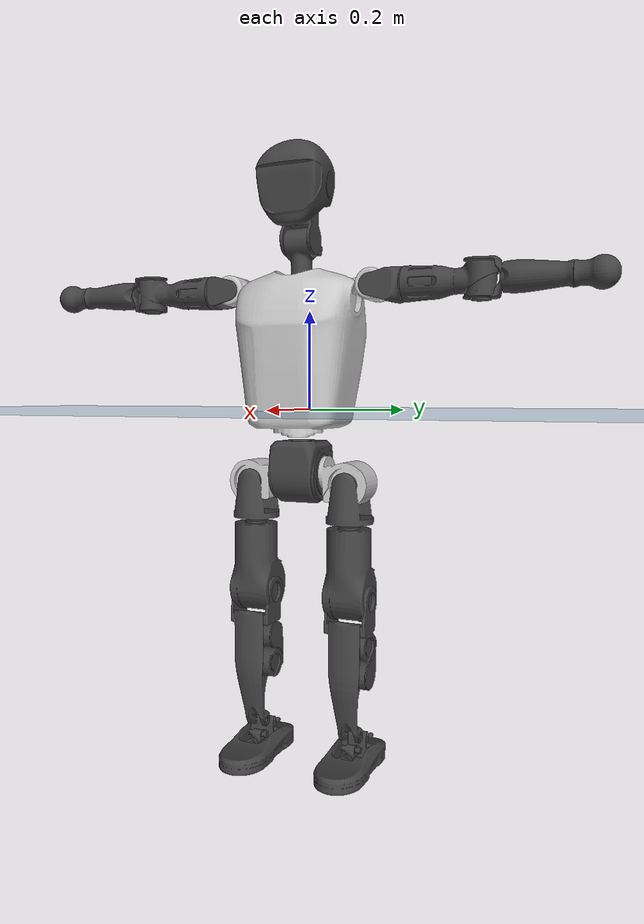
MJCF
<mujoco model="T1">
  <compiler angle="radian" assetdir="assets" balanceinertia="true" inertiafromgeom="false"/>

  <option timestep="0.005" density="1.2" viscosity="2e-05"/>

  <size nkey="1"/>

  <visual>
    <quality shadowsize="8192"/>
    <map shadowclip="0.5"/>
  </visual>

  <default>
    <default class="/">
      <joint armature="0.01" damping="0.01" frictionloss="0.1"/>
      <geom contype="0" conaffinity="0" group="1" solref="-1000 -80"/>
      <site size="0.01 0.005 0.005" group="5"/>
      <general forcelimited="true" biastype="affine" gainprm="25" biasprm="0 -25 -0.6"/>
      <default class="t1">
        <geom rgba="0.25 0.25 0.25 1"/>
        <default class="visual">
          <geom type="mesh" group="2"/>
        </default>
        <default class="collision">
          <geom group="3"/>
        </default>
        <default class="foot">
          <geom size="0.1115 0.05 0.015" type="box" condim="6" group="4" priority="1" solimp="0.015 1 0.015"/>
        </default>
        <default class="reward_collision_sphere">
          <geom group="5" rgba="1 0 0 1"/>
        </default>
      </default>
    </default>
  </default>

  <asset>
    <texture type="skybox" colorspace="auto" name="//unnamed_texture_0" builtin="gradient" rgb1="0.95 0.95 0.95" rgb2="0.95 0.95 0.95" width="100" height="600"/>
    <texture type="2d" colorspace="auto" name="texplane" builtin="checker" rgb1="0.345 0.575 0.748" rgb2="0.345 0.575 0.748" markrgb="1 1 1" width="512" height="512"/>
    <material name="MatPlane" class="/" texture="texplane" texuniform="true" texrepeat="2 2" specular="0.9"/>
    <mesh name="Trunk" class="/" file="Trunk.stl"/>
    <mesh name="H1" class="/" file="H1.stl"/>
    <mesh name="H2" class="/" file="H2.stl"/>
    <mesh name="AL1" class="/" file="AL1.stl"/>
    <mesh name="AL2" class="/" file="AL2.stl"/>
    <mesh name="AL3" class="/" file="AL3.stl"/>
    <mesh name="left_hand_link" class="/" file="left_hand_link.stl"/>
    <mesh name="AR1" class="/" file="AR1.stl"/>
    <mesh name="AR2" class="/" file="AR2.stl"/>
    <mesh name="AR3" class="/" file="AR3.stl"/>
    <mesh name="right_hand_link" class="/" file="right_hand_link.stl"/>
    <mesh name="Waist" class="/" file="Waist.stl"/>
    <mesh name="Hip_Pitch_Left" class="/" file="Hip_Pitch_Left.stl"/>
    <mesh name="Hip_Roll_Left" class="/" file="Hip_Roll_Left.stl"/>
    <mesh name="Hip_Yaw_Left" class="/" file="Hip_Yaw_Left.stl"/>
    <mesh name="Shank_Left" class="/" file="Shank_Left.stl"/>
    <mesh name="Ankle_Cross_Left" class="/" file="Ankle_Cross_Left.stl"/>
    <mesh name="left_foot_link" class="/" file="left_foot_link.stl"/>
    <mesh name="Hip_Pitch_Right" class="/" file="Hip_Pitch_Right.stl"/>
    <mesh name="Hip_Roll_Right" class="/" file="Hip_Roll_Right.stl"/>
    <mesh name="Hip_Yaw_Right" class="/" file="Hip_Yaw_Right.stl"/>
    <mesh name="Shank_Right" class="/" file="Shank_Right.stl"/>
    <mesh name="Ankle_Cross_Right" class="/" file="Ankle_Cross_Right.stl"/>
    <mesh name="right_foot_link" class="/" file="right_foot_link.stl"/>
  </asset>

  <worldbody>
    <geom name="floor" class="/" size="100 100 0.125" type="plane" group="0" material="MatPlane"/>
    <light name="toplight_shadow" class="/" pos="0 0 5" dir="0.0990148 0.0990148 -0.990148" type="directional" ambient="0.04 0.04 0.04" diffuse="0.55 0.55 0.55" specular="0.12 0.12 0.12"/>
    <light name="toplight_fill" class="/" pos="0 0 5" dir="0.0990148 0.0990148 -0.990148" type="directional" castshadow="false" ambient="0.04 0.04 0.04" diffuse="0.3 0.3 0.3" specular="0.08 0.08 0.08"/>
    <body name="trunk" childclass="t1" pos="0.000328563 0.00143846 -0.00266942" quat="0.999999 4.33872e-06 -0.000681261 -0.00114248">
      <inertial pos="0.0398786 -0.000396943 0.116052" quat="0.999961 3.32427e-05 -0.00877474 0.000227589" mass="9.2626" diaginertia="0.0184175 0.0678666 0.0877829"/>
      <joint name="//unnamed_joint_0" type="free" armature="0" damping="0" frictionloss="0"/>
      <geom name="//unnamed_geom_1" class="visual" rgba="0.76 0.76 0.76 1" mesh="Trunk"/>
      <geom name="//unnamed_geom_2" class="collision" size="0.0703886 0.0938515 0.140777" pos="0.0438497 0 0.132533" type="box"/>
      <geom name="//unnamed_geom_3" class="reward_collision_sphere" size="0.107929" pos="0.0438497 0 0.110444"/>
      <geom name="//unnamed_geom_4" class="reward_collision_sphere" size="0.0140777" pos="0.0438497 0.0833231 0"/>
      <geom name="//unnamed_geom_5" class="reward_collision_sphere" size="0.0140777" pos="0.0438497 -0.0833231 0"/>
      <geom name="//unnamed_geom_6" class="reward_collision_sphere" size="0.0140777" pos="0.0438497 0.104889 0.1988"/>
      <geom name="//unnamed_geom_7" class="reward_collision_sphere" size="0.0140777" pos="0.0438497 -0.104889 0.1988"/>
      <site name="imu" pos="-0.0132995 0.00082403 -0.000114222" size="0.00938515"/>
      <camera name="track" pos="0 -1.96054 0" quat="0.707107 0.707107 0 0" mode="trackcom"/>
      <camera name="ego_camera" pos="0.0891611 0 0.463867" quat="-0.5 -0.5 0.5 0.5"/>
      <body name="H1" pos="0.0461417 -0.000192564 0.26958" quat="0.999999 0.00134635 -0.000106447 0.000225508">
        <inertial pos="0.000829466 -0.00133737 0.0623667" quat="0.762964 -0.012159 0.00123519 0.646326" mass="0.368787" diaginertia="5.01912e-05 0.00020613 0.000238201"/>
        <joint name="AAHead_yaw" pos="0 0 0" axis="-0.00113274 -0.000514009 0.999999" range="-1.62331 1.58979" armature="0.00938944" damping="0.00551054" frictionloss="0.0922663"/>
        <geom name="//unnamed_geom_8" class="visual" mesh="H1"/>
        <body name="H2" pos="0.000405236 -0.00113978 0.0697869" quat="0.999999 0.00131643 -0.000287849 0.000255002">
          <inertial pos="0.00505996 0.000173305 0.109139" quat="0.98843 0.106609 -0.074538 -0.0780042" mass="0.502912" diaginertia="0.000413697 0.00169302 0.00282116"/>
          <joint name="Head_pitch" pos="0 0 0" axis="0.0135797 -0.999907 -0.00156847" range="-1.26183 0.403347" armature="0.0105891" damping="0.0192333" frictionloss="0.106401"/>
          <geom name="//unnamed_geom_9" class="visual" mesh="H2"/>
          <geom name="//unnamed_geom_10" class="collision" size="0.0750812" pos="0.00730829 0 0.121489"/>
          <geom name="//unnamed_geom_11" class="reward_collision_sphere" size="0.0844664" pos="0.0146166 0 0.110444"/>
        </body>
      </body>
      <body name="AL1" pos="0.0455536 0.10625 0.243473" quat="1 -7.58089e-05 0.000267645 5.33672e-06">
        <inertial pos="-0.00328043 0.04386 -0.00051286" quat="0.505635 0.487856 -0.504666 0.50164" mass="0.43236" diaginertia="0.000277566 0.00119136 0.000474561"/>
        <joint name="Left_Shoulder_Pitch" pos="0 0 0" axis="-0.000232566 1 -4.95648e-05" stiffness="0.0019855" range="-3.29605 1.22323" armature="0.00965532" damping="0.0127026" frictionloss="0.0946094"/>
        <geom name="//unnamed_geom_12" class="visual" rgba="0.76 0.76 0.76 1" mesh="AL1"/>
        <body name="AL2" pos="0.000211024 0.0478471 -0.00272797" quat="0.999999 -0.000874127 -0.000352293 -0.000902076">
          <inertial pos="0.00328465 0.0364861 -0.00272002" quat="0.487951 0.511712 -0.488008 0.511764" mass="0.136208" diaginertia="8.4887e-05 0.000308313 0.000287313"/>
          <joint name="Left_Shoulder_Roll" pos="0 0 0" axis="-0.999921 -0.0124729 -0.0013476" range="-1.57026 1.76062" armature="0.00898956" damping="0.00461401" frictionloss="0.0813274"/>
          <geom name="//unnamed_geom_13" class="visual" mesh="AL2"/>
          <body name="AL3" pos="-0.0020026 0.0586519 0.00149677" quat="1 -0.000101762 0.00011425 0.000234215">
            <inertial pos="0.000756627 0.0836041 0.00234735" quat="0.706908 0.707304 -0.000257091 -0.00111003" mass="0.837015" diaginertia="0.00268376 0.011551 0.00101058"/>
            <joint name="Left_Elbow_Pitch" pos="0 0 0" axis="0.00971157 -0.999917 -0.00845187" range="-2.29154 2.26392" armature="0.00973518" damping="0.00594924" frictionloss="0.093379"/>
            <geom name="//unnamed_geom_14" class="visual" mesh="AL3"/>
            <geom name="//unnamed_geom_15" class="collision" size="0.0281555 0.0703886" pos="0 0.0490136 0" quat="0.707105 0.707108 0 0" type="cylinder"/>
            <geom name="//unnamed_geom_16" class="reward_collision_sphere" size="0.0337865"/>
            <body name="left_hand_link" pos="-0.00109978 0.141999 0.00306324" quat="1 0.0001276 0.000189011 0.000110038">
              <inertial pos="4.39459e-05 0.107697 0.0024267" quat="0.70918 0.705024 -0.00147997 -0.00170876" mass="0.279614" diaginertia="0.00169892 0.00775701 0.000364916"/>
              <joint name="Left_Elbow_Yaw" pos="0 0 0" axis="0.00401049 0.0147438 0.999883" range="-2.46054 0.0157728" armature="0.00883743" damping="0.0136365" frictionloss="0.100176"/>
              <geom name="//unnamed_geom_17" class="visual" mesh="left_hand_link"/>
              <geom name="//unnamed_geom_18" class="collision" size="0.0281555 0.0821201" pos="0 0.127435 0" quat="0.707105 0.707108 0 0" type="cylinder"/>
              <geom name="//unnamed_geom_19" class="reward_collision_sphere" size="0.0469258"/>
              <geom name="//unnamed_geom_20" class="reward_collision_sphere" size="0.032848" pos="0 0.10783 0"/>
              <geom name="//unnamed_geom_21" class="reward_collision_sphere" size="0.032848" pos="0 0.210758 0"/>
            </body>
          </body>
        </body>
      </body>
      <body name="AR1" pos="0.043816 -0.104546 0.244464" quat="0.999999 -0.000229526 -3.91727e-05 0.00109212">
        <inertial pos="-0.000787319 -0.0445888 -0.00111296" quat="0.505331 0.494574 -0.50427 0.49573" mass="0.437934" diaginertia="0.000278649 0.00117526 0.000483126"/>
        <joint name="Right_Shoulder_Pitch" pos="0 0 0" axis="-0.00254176 -0.999996 0.00115101" range="-1.22631 3.33783" armature="0.0097229" damping="0" frictionloss="0.0925063"/>
        <geom name="//unnamed_geom_22" class="visual" rgba="0.76 0.76 0.76 1" mesh="AR1"/>
        <body name="AR2" pos="-0.000415726 -0.0458604 -0.000417702" quat="1 -0.000361145 0.000296266 -0.000631401">
          <inertial pos="0.00295367 -0.0371256 0.00216132" quat="0.512614 0.4862 -0.51106 0.489545" mass="0.12799" diaginertia="8.63003e-05 0.000315303 0.00028081"/>
          <joint name="Right_Shoulder_Roll" pos="0 0 0" axis="-0.999973 -0.00142101 0.0071895" range="-1.75926 1.5655" armature="0.00942885" damping="0.00830951" frictionloss="0.105639"/>
          <geom name="//unnamed_geom_23" class="visual" mesh="AR2"/>
          <body name="AR3" pos="-0.0015368 -0.0569497 0.000269392" quat="1 -0.000209606 7.25789e-05 0.00035227">
            <inertial pos="-0.00302008 -0.0831909 -0.00105766" quat="0.701838 0.712329 0.00243457 0.00223137" mass="0.863655" diaginertia="0.00262157 0.0111688 0.0010173"/>
            <joint name="Right_Elbow_Pitch" pos="0 0 0" axis="0.00284202 0.999996 -7.31493e-05" range="-2.27666 2.25546" armature="0.0082814" damping="0.00440397" frictionloss="0.0946759"/>
            <geom name="//unnamed_geom_24" class="visual" mesh="AR3"/>
            <geom name="//unnamed_geom_25" class="collision" size="0.0281555 0.0703886" pos="0 -0.0490136 0" quat="0.707105 0.707108 0 0" type="cylinder"/>
            <geom name="//unnamed_geom_26" class="reward_collision_sphere" size="0.0337865"/>
            <body name="right_hand_link" pos="-0.000481143 -0.144459 0.00257555" quat="1 -1.82178e-05 -4.88385e-06 -1.05998e-05">
              <inertial pos="-0.00173238 -0.105189 0.0017938" quat="0.708054 0.706148 0.00110709 0.00360385" mass="0.270125" diaginertia="0.00168509 0.00735722 0.000353242"/>
              <joint name="Right_Elbow_Yaw" pos="0 0 0" axis="-0.00590126 -0.00151382 0.999981" range="-0.000337132 2.43983" armature="0.00965279" damping="0.00852591" frictionloss="0.0952175"/>
              <geom name="//unnamed_geom_27" class="visual" mesh="right_hand_link"/>
              <geom name="//unnamed_geom_28" class="collision" size="0.0281555 0.0821201" pos="0 -0.127435 0" quat="0.707105 0.707108 0 0" type="cylinder"/>
              <geom name="//unnamed_geom_29" class="reward_collision_sphere" size="0.0469258"/>
              <geom name="//unnamed_geom_30" class="reward_collision_sphere" size="0.032848" pos="0 -0.10783 0"/>
              <geom name="//unnamed_geom_31" class="reward_collision_sphere" size="0.032848" pos="0 -0.210758 0"/>
            </body>
          </body>
        </body>
      </body>
      <body name="Waist" pos="0.0474798 0.000632213 -0.125972" quat="1 -8.1728e-05 -0.000161327 -3.25356e-05">
        <inertial pos="0.0028126 0.00017579 0.00803319" quat="0.983846 0.00176976 -0.179006 0.00111129" mass="2.1106" diaginertia="0.0010876 0.00488996 0.00758672"/>
        <joint name="Waist" pos="0 0 0" axis="-0.00204421 -0.00613806 0.999979" range="-1.6086 1.58243" armature="0.00935291" damping="0" frictionloss="0.0951915"/>
        <geom name="//unnamed_geom_32" class="visual" mesh="Waist"/>
        <body name="Hip_Pitch_Left" pos="-0.000133423 0.106472 0.00261153" quat="1 6.04615e-05 2.79335e-05 -8.65442e-05">
          <inertial pos="-0.00040623 -0.00717094 -0.0228104" quat="0.974413 0.224007 0.0184611 -0.000173676" mass="0.874078" diaginertia="0.000383643 0.00133163 0.00204126"/>
          <joint name="Left_Hip_Pitch" pos="0 0 0" axis="-0.00169932 0.999999 -0.000176653" range="-1.75296 1.57862" armature="0.00939839" damping="0" frictionloss="0.0825899"/>
          <geom name="//unnamed_geom_33" class="visual" rgba="0.76 0.76 0.76 1" mesh="Hip_Pitch_Left"/>
          <body name="Hip_Roll_Left" pos="0.00135958 -0.00126442 -0.0212031" quat="1 -9.57921e-07 4.30963e-05 -3.90776e-05">
            <inertial pos="-4.75748e-05 0.00104127 -0.0597133" quat="0.706952 -0.00561994 -0.00635953 0.70721" mass="0.325582" diaginertia="0.000376663 0.00142362 0.000871282"/>
            <joint name="Left_Hip_Roll" pos="0 0 0" axis="-0.999987 0.00371897 0.0034739" range="-1.53088 0.201969" armature="0.00934266" damping="0.0183095" frictionloss="0.085336"/>
            <geom name="//unnamed_geom_34" class="visual" mesh="Hip_Roll_Left"/>
            <geom name="//unnamed_geom_35" class="reward_collision_sphere" size="0.0516183"/>
            <body name="Hip_Yaw_Left" pos="-0.000685213 -0.0014583 -0.0881894" quat="1 -1.62568e-05 -2.45823e-05 -9.97109e-06">
              <inertial pos="-0.00611137 0.00033941 -0.101406" quat="0.698615 -0.0347265 -0.0298875 0.71403" mass="1.76123" diaginertia="0.00556243 0.0227662 0.00426879"/>
              <joint name="Left_Hip_Yaw" pos="0 0 0" axis="0.00735639 0.00124204 -0.999972" range="-1.01188 1.04805" armature="0.00849764" damping="0.00224981" frictionloss="0.0818899"/>
              <geom name="//unnamed_geom_36" class="visual" mesh="Hip_Yaw_Left"/>
              <geom name="//unnamed_geom_37" class="collision" size="0.0469258 0.0750812" type="cylinder"/>
              <body name="Shank_Left" pos="-0.00998154 0.00252944 -0.146145" quat="0.999999 -0.000696344 -0.000930826 0.00068918">
                <inertial pos="-0.00387296 -0.00219421 -0.13693" quat="0.99732 0.0139986 -0.0258325 0.066997" mass="1.43256" diaginertia="0.0074801 0.031333 0.00308995"/>
                <joint name="Left_Knee_Pitch" pos="0 0 0" axis="0.00793306 0.999959 0.00442851" range="0.0188363 2.34095" armature="0.0102687" damping="0.0159083" frictionloss="0.0816693"/>
                <geom name="//unnamed_geom_38" class="visual" mesh="Shank_Left"/>
                <geom name="//unnamed_geom_39" class="collision" size="0.0469258 0.0703886" pos="0 0 -0.132533" type="cylinder"/>
                <geom name="//unnamed_geom_40" class="reward_collision_sphere" size="0.0610035"/>
                <body name="Ankle_Cross_Left" pos="-0.00296454 0.000152562 -0.309761" quat="1 -0.000107415 -4.27774e-05 -0.00017478">
                  <inertial pos="-0.00280344 -3.70195e-05 -0.00839443" quat="0.434589 0.554051 0.547364 0.452276" mass="0.0591653" diaginertia="6.05726e-06 2.30789e-05 1.83718e-05"/>
                  <joint name="Left_Ankle_Pitch" pos="0 0 0" axis="-0.0040502 0.999991 -0.00113264" range="-0.878311 0.298577" armature="0.00926514" damping="0.01153" frictionloss="0.0927823"/>
                  <geom name="//unnamed_geom_41" class="visual" mesh="Ankle_Cross_Left"/>
                  <body name="left_foot_link" pos="0.00144092 0.000454663 -0.0134622" quat="1 -0.000276511 0.000471552 0.000185955">
                    <inertial pos="-3.84363e-06 0.000154038 -0.00739473" quat="-9.22346e-05 0.620493 0.000626609 0.784212" mass="0.560424" diaginertia="0.000553088 0.00216708 0.00358637"/>
                    <joint name="Left_Ankle_Roll" pos="0 0 0" axis="-0.999965 -0.00809696 0.00224679" range="-0.477646 0.442022" armature="0.00937218" damping="0.0225092" frictionloss="0.0938521"/>
                    <geom name="//unnamed_geom_42" class="visual" mesh="left_foot_link"/>
                    <geom name="left_foot" class="foot" size="0.112678 0.0518195 0.0146869" pos="0.00730829 0 -0.0165667"/>
                    <geom name="//unnamed_geom_44" class="reward_collision_sphere" size="0.0488028" pos="0.00730829 0 -0.0165667"/>
                    <geom name="//unnamed_geom_45" class="reward_collision_sphere" size="0.0281555" pos="0.0694287 -0.0225463 -0.0165667"/>
                    <geom name="//unnamed_geom_46" class="reward_collision_sphere" size="0.0281555" pos="-0.051158 -0.0225463 -0.0165667"/>
                    <site name="left_foot" class="foot" pos="0.00730829 0 -0.0165667" size="0.00938515"/>
                  </body>
                </body>
              </body>
            </body>
          </body>
        </body>
        <body name="Hip_Pitch_Right" pos="-0.0030692 -0.105575 0.00222012" quat="0.999999 0.000401034 0.000250729 0.000958313">
          <inertial pos="0.000457408 0.00480772 -0.0209386" quat="0.973531 -0.228057 0.0144653 -0.00437352" mass="0.833207" diaginertia="0.000369742 0.00130412 0.00204235"/>
          <joint name="Right_Hip_Pitch" pos="0 0 0" axis="-0.000206175 -1 -7.00676e-05" range="-1.54472 1.74873" armature="0.00924208" damping="0.013348" frictionloss="0.106431"/>
          <geom name="//unnamed_geom_47" class="visual" rgba="0.76 0.76 0.76 1" mesh="Hip_Pitch_Right"/>
          <body name="Hip_Roll_Right" pos="-0.00301065 4.54515e-05 -0.0200269" quat="1 0.000478544 -8.27572e-05 0.000230917">
            <inertial pos="0.00184547 -0.000203056 -0.0589247" quat="0.706895 -0.0064031 -0.00655594 0.707259" mass="0.317823" diaginertia="0.00035129 0.00136404 0.000837374"/>
            <joint name="Right_Hip_Roll" pos="0 0 0" axis="-0.999964 -0.00813572 0.00258623" stiffness="0.000557041" range="-0.171004 1.5769" armature="0.00929823" damping="0.00835544" frictionloss="0.104735"/>
            <geom name="//unnamed_geom_48" class="visual" mesh="Hip_Roll_Right"/>
            <geom name="//unnamed_geom_49" class="reward_collision_sphere" size="0.0516183"/>
            <body name="Hip_Yaw_Right" pos="0.00213537 -0.000599639 -0.0885364" quat="1 0.000308115 -0.000363033 -8.34305e-05">
              <inertial pos="-0.00706271 0.00228012 -0.0995958" quat="0.713754 -0.0314534 -0.0362254 0.698751" mass="1.74643" diaginertia="0.00536088 0.0219665 0.00413889"/>
              <joint name="Right_Hip_Yaw" pos="0 0 0" axis="0.00147188 -0.00190358 -0.999997" stiffness="0.00291749" range="-1.01753 1.00482" armature="0.00925356" damping="0.0187536" frictionloss="0.0935099"/>
              <geom name="//unnamed_geom_50" class="visual" mesh="Hip_Yaw_Right"/>
              <geom name="//unnamed_geom_51" class="collision" size="0.0469258 0.0750812" type="cylinder"/>
              <body name="Shank_Right" pos="-0.00833647 -0.000531046 -0.145688" quat="1 -5.66706e-06 -0.000239296 -0.000138395">
                <inertial pos="-0.00703782 -0.00104331 -0.137162" quat="0.999192 -0.0109501 -0.0297043 -0.0247748" mass="1.45942" diaginertia="0.00718004 0.031334 0.00313989"/>
                <joint name="Right_Knee_Pitch" pos="0 0 0" axis="-0.00229842 -0.999997 0.000130493" range="-2.34354 -0.0543345" armature="0.00949751" damping="0.00747359" frictionloss="0.0858281"/>
                <geom name="//unnamed_geom_52" class="visual" mesh="Shank_Right"/>
                <geom name="//unnamed_geom_53" class="collision" size="0.0469258 0.0703886" pos="0 0 -0.132533" type="cylinder"/>
                <geom name="//unnamed_geom_54" class="reward_collision_sphere" size="0.0610035"/>
                <body name="Ankle_Cross_Right" pos="-0.000310037 -0.00102377 -0.312078" quat="1 -4.87191e-05 -0.00019345 -0.000291159">
                  <inertial pos="-0.00335107 -0.000365831 -0.00902521" quat="0.443977 0.547934 0.55135 0.445719" mass="0.0603321" diaginertia="6.10688e-06 2.36775e-05 1.89149e-05"/>
                  <joint name="Right_Ankle_Pitch" pos="0 0 0" axis="-0.00215827 -0.999995 0.00243987" stiffness="0.000839052" range="-0.299156 0.895567" armature="0.00988562" damping="0.00392863" frictionloss="0.0922356"/>
                  <geom name="//unnamed_geom_55" class="visual" mesh="Ankle_Cross_Right"/>
                  <body name="right_foot_link" pos="0.00174782 0.000146557 -0.0124789" quat="1 0.00022348 0.000206782 -6.29829e-05">
                    <inertial pos="5.69366e-05 0.000232717 -0.00739524" quat="-0.000286137 0.623303 -0.00218723 0.781977" mass="0.571481" diaginertia="0.000560655 0.00211617 0.00362847"/>
                    <joint name="Right_Ankle_Roll" pos="0 0 0" axis="-0.999999 0.00102196 0.00108054" range="-0.418418 0.45007" armature="0.0089971" damping="0.00829953" frictionloss="0.105967"/>
                    <geom name="//unnamed_geom_56" class="visual" mesh="right_foot_link"/>
                    <geom name="right_foot" class="foot" size="0.102717 0.0412402 0.0155979" pos="0.00730829 0 -0.0165667"/>
                    <geom name="//unnamed_geom_58" class="reward_collision_sphere" size="0.0375406"/>
                    <geom name="//unnamed_geom_59" class="reward_collision_sphere" size="0.0281555" pos="0.00730829 0 -0.0165667"/>
                    <geom name="//unnamed_geom_60" class="reward_collision_sphere" size="0.0281555" pos="0.0694287 0.0225463 -0.0165667"/>
                    <geom name="//unnamed_geom_61" class="reward_collision_sphere" size="0.0281555" pos="-0.051158 0.0225463 -0.0165667"/>
                    <site name="right_foot" class="foot" pos="0.00730829 0 -0.0165667" size="0.00938515"/>
                  </body>
                </body>
              </body>
            </body>
          </body>
        </body>
      </body>
    </body>
  </worldbody>

  <contact>
    <pair class="/" geom1="floor" geom2="left_foot" name="//unnamed_contact_0"/>
    <pair class="/" geom1="floor" geom2="right_foot" name="//unnamed_contact_1"/>
  </contact>

  <actuator>
    <general name="AAHead_yaw" class="/" joint="AAHead_yaw" forcerange="-6.50571 6.50571" gainprm="24.717" biasprm="0 -24.717 -0.55119"/>
    <general name="Head_pitch" class="/" joint="Head_pitch" forcerange="-6.61399 6.61399" gainprm="24.717" biasprm="0 -24.717 -0.55119"/>
    <general name="Left_Shoulder_Pitch" class="/" joint="Left_Shoulder_Pitch" forcerange="-16.7696 16.7696" gainprm="24.717" biasprm="0 -24.717 -0.55119"/>
    <general name="Left_Shoulder_Roll" class="/" joint="Left_Shoulder_Roll" forcerange="-16.1738 16.1738" gainprm="24.717" biasprm="0 -24.717 -0.55119"/>
    <general name="Left_Elbow_Pitch" class="/" joint="Left_Elbow_Pitch" forcerange="-15.4342 15.4342" gainprm="24.717" biasprm="0 -24.717 -0.55119"/>
    <general name="Left_Elbow_Yaw" class="/" joint="Left_Elbow_Yaw" forcerange="-17.1168 17.1168" gainprm="24.717" biasprm="0 -24.717 -0.55119"/>
    <general name="Right_Shoulder_Pitch" class="/" joint="Right_Shoulder_Pitch" forcerange="-16.2734 16.2734" gainprm="24.717" biasprm="0 -24.717 -0.55119"/>
    <general name="Right_Shoulder_Roll" class="/" joint="Right_Shoulder_Roll" forcerange="-17.6235 17.6235" gainprm="24.717" biasprm="0 -24.717 -0.55119"/>
    <general name="Right_Elbow_Pitch" class="/" joint="Right_Elbow_Pitch" forcerange="-16.9374 16.9374" gainprm="24.717" biasprm="0 -24.717 -0.55119"/>
    <general name="Right_Elbow_Yaw" class="/" joint="Right_Elbow_Yaw" forcerange="-17.1635 17.1635" gainprm="24.717" biasprm="0 -24.717 -0.55119"/>
    <general name="Waist" class="/" joint="Waist" forcerange="-27.9969 27.9969" gainprm="24.717" biasprm="0 -24.717 -0.55119"/>
    <general name="Left_Hip_Pitch" class="/" joint="Left_Hip_Pitch" forcerange="-41.6993 41.6993" gainprm="24.717" biasprm="0 -24.717 -0.55119"/>
    <general name="Left_Hip_Roll" class="/" joint="Left_Hip_Roll" forcerange="-30.9941 30.9941" gainprm="24.717" biasprm="0 -24.717 -0.55119"/>
    <general name="Left_Hip_Yaw" class="/" joint="Left_Hip_Yaw" forcerange="-26.8773 26.8773" gainprm="24.717" biasprm="0 -24.717 -0.55119"/>
    <general name="Left_Knee_Pitch" class="/" joint="Left_Knee_Pitch" forcerange="-61.4599 61.4599" gainprm="24.717" biasprm="0 -24.717 -0.55119"/>
    <general name="Left_Ankle_Pitch" class="/" joint="Left_Ankle_Pitch" forcerange="-17.967 17.967" gainprm="24.717" biasprm="0 -24.717 -0.55119"/>
    <general name="Left_Ankle_Roll" class="/" joint="Left_Ankle_Roll" forcerange="-13.6597 13.6597" gainprm="24.717" biasprm="0 -24.717 -0.55119"/>
    <general name="Right_Hip_Pitch" class="/" joint="Right_Hip_Pitch" forcerange="-38.2568 38.2568" gainprm="24.717" biasprm="0 -24.717 -0.55119"/>
    <general name="Right_Hip_Roll" class="/" joint="Right_Hip_Roll" forcerange="-28.5508 28.5508" gainprm="24.717" biasprm="0 -24.717 -0.55119"/>
    <general name="Right_Hip_Yaw" class="/" joint="Right_Hip_Yaw" forcerange="-29.7177 29.7177" gainprm="24.717" biasprm="0 -24.717 -0.55119"/>
    <general name="Right_Knee_Pitch" class="/" joint="Right_Knee_Pitch" forcerange="-55.1061 55.1061" gainprm="24.717" biasprm="0 -24.717 -0.55119"/>
    <general name="Right_Ankle_Pitch" class="/" joint="Right_Ankle_Pitch" forcerange="-18.5227 18.5227" gainprm="24.717" biasprm="0 -24.717 -0.55119"/>
    <general name="Right_Ankle_Roll" class="/" joint="Right_Ankle_Roll" forcerange="-13.9225 13.9225" gainprm="24.717" biasprm="0 -24.717 -0.55119"/>
  </actuator>

  <sensor>
    <gyro site="imu" name="imu_angular_velocity"/>
    <velocimeter site="imu" name="imu_linear_velocity"/>
    <framelinvel objtype="site" objname="left_foot" name="left_foot_global_linear_velocity"/>
    <framelinvel objtype="site" objname="right_foot" name="right_foot_global_linear_velocity"/>
  </sensor>

  <keyframe>
    <key name="home" qpos="0 0 0.6385 1 0 0 0 0 0 0 1.4 0 -0.4 0 -1.4 0 0.4 0 -0.4 0 0 0.8 -0.4 0 0.4 0 0 -0.8 0.4 0"/>
  </keyframe>
</mujoco>
